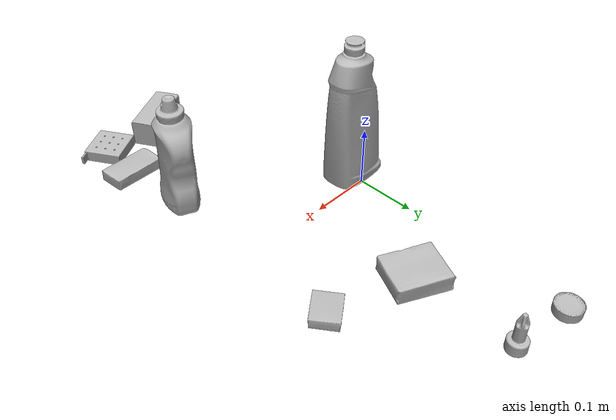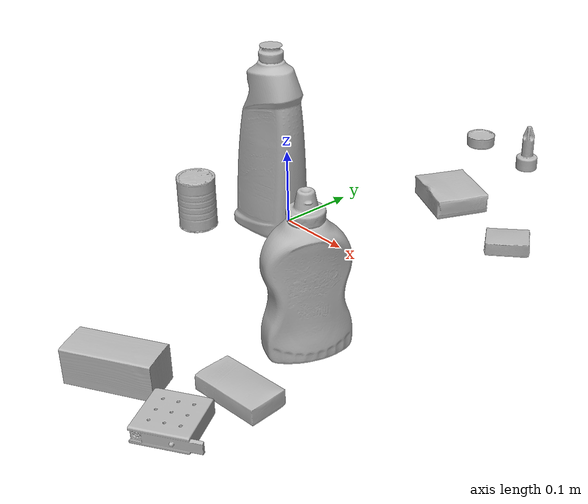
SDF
<sdf version="1.4">
  <world name="default">
    <light name="light1" type="point">
      <pose>0 0 1 0 0 0</pose>
      <diffuse>3 3 3 1</diffuse>
      <specular>3 3 3 1</specular>
    </light>
    <light name="light2" type="point">
      <pose>0 0.5 2 0 0 0</pose>
      <diffuse>1 1 1 1</diffuse>
      <specular>1 1 1 1</specular>
    </light>
    <light name="light3" type="point">
      <pose>0 0.5 2 0 0 0</pose>
      <diffuse>3 3 3 1</diffuse>
      <specular>3 3 3 1</specular>
    </light>
    <scene>
      <ambient>0.7 0.7 0.7</ambient>
    </scene>
    <model name="bottle1">
      <link name="link_bottle1">
        <collision name="default">
          <geometry>
            <mesh>
              <uri>model://mustard_bottle/collision_meshes/collision.obj</uri>
              <scale>1.0 1.0 1.0</scale>
            </mesh>
          </geometry>
          <surface>
            <friction>
              <ode>
                <mu>0.5</mu>
                <mu2>0.5</mu2>
              </ode>
            </friction>
          <contact>
        <ode>
            <max_vel>0</max_vel>
            <min_depth>0.0001</min_depth>
            <kp>1e8</kp>
        </ode>
    </contact></surface>
        </collision>
        <visual name="default">
          <geometry>
            <mesh>
              <uri>model://mustard_bottle/visual_meshes/visual.dae</uri>
              <scale>1.0 1.0 1.0</scale>
            </mesh>
          </geometry>
        </visual>
        <inertial>
          <mass>0.9814921021461487</mass>
          <pose>0.000503245391882956 -0.00015647400869056582 -0.0174757968634367 0.00041823298570721707 0.000946579165099878 0.024853733541460008</pose>
          <inertia>
            <ixx>0.0027254699</ixx>
            <iyy>0.0023913688</iyy>
            <izz>0.0007182988</izz>
            <ixy>0</ixy>
            <ixz>0</ixz>
            <iyz>0</iyz>
          </inertia>
        </inertial>
      </link>
      <pose>0.2351628690958023 -0.174056276679039 0.09583091735839844 -0.012050440982777398 -0.004889931747297874 -0.39843229509858885</pose>
    </model>
    <model name="bottle2">
      <link name="link_bottle2">
        <collision name="default">
          <geometry>
            <mesh>
              <uri>model://bleach_cleanser/collision_meshes/collision.obj</uri>
              <scale>1.0 1.0 1.0</scale>
            </mesh>
          </geometry>
          <surface>
            <friction>
              <ode>
                <mu>0.5</mu>
                <mu2>0.5</mu2>
              </ode>
            </friction>
          <contact>
        <ode>
            <max_vel>0</max_vel>
            <min_depth>0.0001</min_depth>
            <kp>1e8</kp>
        </ode>
    </contact></surface>
        </collision>
        <visual name="default">
          <geometry>
            <mesh>
              <uri>model://bleach_cleanser/visual_meshes/visual.dae</uri>
              <scale>1.0 1.0 1.0</scale>
            </mesh>
          </geometry>
        </visual>
        <inertial>
          <mass>0.5613878965377808</mass>
          <pose>0.00012193182919872925 0.0037838828284293413 -0.02442161738872528 -0.07381670616369514 0.00042011545192634117 -0.006875071107578698</pose>
          <inertia>
            <ixx>0.0027323565</ixx>
            <iyy>0.002546156</iyy>
            <izz>0.0004671619</izz>
            <ixy>0</ixy>
            <ixz>0</ixz>
            <iyz>0</iyz>
          </inertia>
        </inertial>
      </link>
      <pose>-0.0037779926788061857 -0.02570786513388157 0.12578417360782623 -0.00020119756926098646 1.507839224430588e-05 -1.5166846329321768</pose>
    </model>
    <model name="toy1">
      <link name="link_toy1">
        <collision name="default">
          <geometry>
            <mesh>
              <uri>model://nine_hole_peg_test/collision_meshes/collision.obj</uri>
              <scale>0.5 0.5 0.5</scale>
            </mesh>
          </geometry>
          <surface>
            <friction>
              <ode>
                <mu>0.5</mu>
                <mu2>0.5</mu2>
              </ode>
            </friction>
          <contact>
        <ode>
            <max_vel>0</max_vel>
            <min_depth>0.0001</min_depth>
            <kp>1e8</kp>
        </ode>
    </contact></surface>
        </collision>
        <visual name="default">
          <geometry>
            <mesh>
              <uri>model://nine_hole_peg_test/visual_meshes/visual.dae</uri>
              <scale>0.5 0.5 0.5</scale>
            </mesh>
          </geometry>
        </visual>
        <inertial>
          <mass>0.10001979023218155</mass>
          <pose>-0.002308693015947938 -0.0048238071613013744 1.323034393863054e-05 -0.001466679064329537 0.000719417562538249 -0.6342417933325166</pose>
          <inertia>
            <ixx>3.9099352e-05</ixx>
            <iyy>3.650665e-05</iyy>
            <izz>6.851359e-05</izz>
            <ixy>0</ixy>
            <ixz>0</ixz>
            <iyz>0</iyz>
          </inertia>
        </inertial>
      </link>
      <pose>0.25140419602394104 -0.3560328185558319 0.010385503992438316 -3.0331563407854565e-09 7.207386277738154e-09 -1.0204641580289653</pose>
    </model>
    <model name="toy2">
      <link name="link_toy2">
        <collision name="default">
          <geometry>
            <mesh>
              <uri>model://d_toy_airplane/collision_meshes/collision.obj</uri>
              <scale>1.0 1.0 1.0</scale>
            </mesh>
          </geometry>
          <surface>
            <friction>
              <ode>
                <mu>0.5</mu>
                <mu2>0.5</mu2>
              </ode>
            </friction>
          <contact>
        <ode>
            <max_vel>0</max_vel>
            <min_depth>0.0001</min_depth>
            <kp>1e8</kp>
        </ode>
    </contact></surface>
        </collision>
        <visual name="default">
          <geometry>
            <mesh>
              <uri>model://d_toy_airplane/visual_meshes/visual.dae</uri>
              <scale>1.0 1.0 1.0</scale>
            </mesh>
          </geometry>
        </visual>
        <inertial>
          <mass>0.019254321232438087</mass>
          <pose>9.410314669366926e-05 -5.809308640891686e-05 -0.011728096753358841 0.0002669110283705203 0.00467899073598619 0.5194519611142697</pose>
          <inertia>
            <ixx>5.7720713e-06</ixx>
            <iyy>5.776424e-06</iyy>
            <izz>1.7426261e-06</izz>
            <ixy>0</ixy>
            <ixz>0</ixz>
            <iyz>0</iyz>
          </inertia>
        </inertial>
      </link>
      <pose>0.11538705229759216 0.36173656582832336 0.033339161425828934 9.229817848760213e-05 -7.880156148120901e-05 -1.8274215230041861</pose>
    </model>
    <model name="can1">
      <link name="link_can1">
        <collision name="default">
          <geometry>
            <mesh>
              <uri>model://master_chef_can/collision_meshes/collision.obj</uri>
              <scale>0.5 0.5 0.5</scale>
            </mesh>
          </geometry>
          <surface>
            <friction>
              <ode>
                <mu>0.5</mu>
                <mu2>0.5</mu2>
              </ode>
            </friction>
          <contact>
        <ode>
            <max_vel>0</max_vel>
            <min_depth>0.0001</min_depth>
            <kp>1e8</kp>
        </ode>
    </contact></surface>
        </collision>
        <visual name="default">
          <geometry>
            <mesh>
              <uri>model://master_chef_can/visual_meshes/visual.dae</uri>
              <scale>0.5 0.5 0.5</scale>
            </mesh>
          </geometry>
        </visual>
        <inertial>
          <mass>0.11909646540880203</mass>
          <pose>-4.661963976104744e-05 1.3926845099376806e-07 -5.07990553160198e-05 -0.0017995128948922 0.0006479239957886283 -0.6102624789319168</pose>
          <inertia>
            <ixx>6.990155e-05</ixx>
            <iyy>6.938709e-05</iyy>
            <izz>3.8625953e-05</izz>
            <ixy>0</ixy>
            <ixz>0</ixz>
            <iyz>0</iyz>
          </inertia>
        </inertial>
      </link>
      <pose>-0.07382690906524658 -0.09397009760141373 0.03530200570821762 -1.1523919729174274e-06 -8.839349211291988e-07 1.767533495696146</pose>
    </model>
    <model name="can2">
      <link name="link_can2">
        <collision name="default">
          <geometry>
            <mesh>
              <uri>model://tuna_fish_can/collision_meshes/collision.obj</uri>
              <scale>0.5 0.5 0.5</scale>
            </mesh>
          </geometry>
          <surface>
            <friction>
              <ode>
                <mu>0.5</mu>
                <mu2>0.5</mu2>
              </ode>
            </friction>
          <contact>
        <ode>
            <max_vel>0</max_vel>
            <min_depth>0.0001</min_depth>
            <kp>1e8</kp>
        </ode>
    </contact></surface>
        </collision>
        <visual name="default">
          <geometry>
            <mesh>
              <uri>model://tuna_fish_can/visual_meshes/visual.dae</uri>
              <scale>0.5 0.5 0.5</scale>
            </mesh>
          </geometry>
        </visual>
        <inertial>
          <mass>0.019333453848958015</mass>
          <pose>-2.0361452698125504e-05 -7.256490789586678e-06 -0.0005269024986773729 -0.0017944786606280685 0.0001716327651594619 0.24054823336333434</pose>
          <inertia>
            <ixx>2.6139116e-06</ixx>
            <iyy>2.6030175e-06</iyy>
            <izz>4.4727767e-06</izz>
            <ixy>0</ixy>
            <ixz>0</ixz>
            <iyz>0</iyz>
          </inertia>
        </inertial>
      </link>
      <pose>0.014367485418915749 0.378476083278656 0.00851999968290329 2.580601074027196e-08 -1.2353073333054543e-08 -0.025003191617324925</pose>
    </model>
    <model name="box1">
      <link name="link_box1">
        <collision name="default">
          <geometry>
            <mesh>
              <uri>model://sugar_box/collision_meshes/collision.obj</uri>
              <scale>0.5 0.5 0.5</scale>
            </mesh>
          </geometry>
          <surface>
            <friction>
              <ode>
                <mu>0.5</mu>
                <mu2>0.5</mu2>
              </ode>
            </friction>
          <contact>
        <ode>
            <max_vel>0</max_vel>
            <min_depth>0.0001</min_depth>
            <kp>1e8</kp>
        </ode>
    </contact></surface>
        </collision>
        <visual name="default">
          <geometry>
            <mesh>
              <uri>model://sugar_box/visual_meshes/visual.dae</uri>
              <scale>0.5 0.5 0.5</scale>
            </mesh>
          </geometry>
        </visual>
        <inertial>
          <mass>0.11277332901954651</mass>
          <pose>0.0005171863595023751 1.924554817378521e-05 -0.0001818240125430748 -0.00040462603870476286 0.0010506635217257978 0.002615378323397263</pose>
          <inertia>
            <ixx>2.34906e-05</ixx>
            <iyy>7.592646e-05</iyy>
            <izz>9.089305e-05</izz>
            <ixy>0</ixy>
            <ixz>0</ixz>
            <iyz>0</iyz>
          </inertia>
        </inertial>
      </link>
      <pose>0.2528069019317627 -0.28015977144241333 0.011399304494261742 0.0007745534424368948 -0.023432979555654404 0.053943263860795336</pose>
    </model>
    <model name="box2">
      <link name="link_box2">
        <collision name="default">
          <geometry>
            <mesh>
              <uri>model://gelatin_box/collision_meshes/collision.obj</uri>
              <scale>1.0 1.0 1.0</scale>
            </mesh>
          </geometry>
          <surface>
            <friction>
              <ode>
                <mu>0.5</mu>
                <mu2>0.5</mu2>
              </ode>
            </friction>
          <contact>
        <ode>
            <max_vel>0</max_vel>
            <min_depth>0.0001</min_depth>
            <kp>1e8</kp>
        </ode>
    </contact></surface>
        </collision>
        <visual name="default">
          <geometry>
            <mesh>
              <uri>model://gelatin_box/visual_meshes/visual.dae</uri>
              <scale>1.0 1.0 1.0</scale>
            </mesh>
          </geometry>
        </visual>
        <inertial>
          <mass>0.18825438618659973</mass>
          <pose>0.0004319618456065655 0.00011156871914863586 -0.0003640321083366871 -0.0010503720853528096 -0.004755817758068365 0.016440559471334753</pose>
          <inertia>
            <ixx>0.00013289225</ixx>
            <iyy>9.492423e-05</iyy>
            <izz>0.0002022916</izz>
            <ixy>0</ixy>
            <ixz>0</ixz>
            <iyz>0</iyz>
          </inertia>
        </inertial>
      </link>
      <pose>0.1125093623995781 0.1961923986673355 0.015168312937021255 0.005597012340670732 -0.007304067739406862 -2.0263102203047114</pose>
    </model>
    <model name="box3">
      <link name="link_box3">
        <collision name="default">
          <geometry>
            <mesh>
              <uri>model://wood_block/collision_meshes/collision.obj</uri>
              <scale>0.5 0.5 0.5</scale>
            </mesh>
          </geometry>
          <surface>
            <friction>
              <ode>
                <mu>0.5</mu>
                <mu2>0.5</mu2>
              </ode>
            </friction>
          <contact>
        <ode>
            <max_vel>0</max_vel>
            <min_depth>0.0001</min_depth>
            <kp>1e8</kp>
        </ode>
    </contact></surface>
        </collision>
        <visual name="default">
          <geometry>
            <mesh>
              <uri>model://wood_block/visual_meshes/visual.dae</uri>
              <scale>0.5 0.5 0.5</scale>
            </mesh>
          </geometry>
        </visual>
        <inertial>
          <mass>0.16905224323272705</mass>
          <pose>-2.906657982748584e-06 -0.00028540476341731846 0.00013204291462898254 -0.05220975529285028 -0.0051926941753174345 -0.0068613788950967446</pose>
          <inertia>
            <ixx>5.655437e-05</ixx>
            <iyy>0.00017865526</iyy>
            <izz>0.00017798702</izz>
            <ixy>0</ixy>
            <ixz>0</ixz>
            <iyz>0</iyz>
          </inertia>
        </inertial>
      </link>
      <pose>0.14590643346309662 -0.35525137186050415 0.0226292684674263 -0.005208360527338908 0.005718717972768731 -2.630705504939645</pose>
    </model>
    <model name="box4">
      <link name="link_box4">
        <collision name="default">
          <geometry>
            <mesh>
              <uri>model://pudding_box/collision_meshes/collision.obj</uri>
              <scale>0.5 0.5 0.5</scale>
            </mesh>
          </geometry>
          <surface>
            <friction>
              <ode>
                <mu>0.5</mu>
                <mu2>0.5</mu2>
              </ode>
            </friction>
          <contact>
        <ode>
            <max_vel>0</max_vel>
            <min_depth>0.0001</min_depth>
            <kp>1e8</kp>
        </ode>
    </contact></surface>
        </collision>
        <visual name="default">
          <geometry>
            <mesh>
              <uri>model://pudding_box/visual_meshes/visual.dae</uri>
              <scale>0.5 0.5 0.5</scale>
            </mesh>
          </geometry>
        </visual>
        <inertial>
          <mass>0.04372405260801315</mass>
          <pose>0.00024474109522998333 0.00040339428232982755 -0.00025944135268218815 0.005213099923843092 -0.006603798704775496 0.02007982702870814</pose>
          <inertia>
            <ixx>1.2356946e-05</ixx>
            <iyy>8.313842e-06</iyy>
            <izz>1.8248264e-05</izz>
            <ixy>0</ixy>
            <ixz>0</ixz>
            <iyz>0</iyz>
          </inertia>
        </inertial>
      </link>
      <pose>0.2465694397687912 0.15224972367286682 0.009862901642918587 0.022348398513362722 -0.011391808051942271 -0.9288834727433127</pose>
    </model>
  <physics type="ode">
      <max_contacts>50</max_contacts>
      <ode>
        <solver>
          <type>quick</type>
          <iters>75</iters>
        </solver>
        <constraints>
          <contact_max_correcting_vel>0</contact_max_correcting_vel>
          <contact_surface_layer>0</contact_surface_layer>
        </constraints>
      </ode>
    </physics></world>
</sdf>
